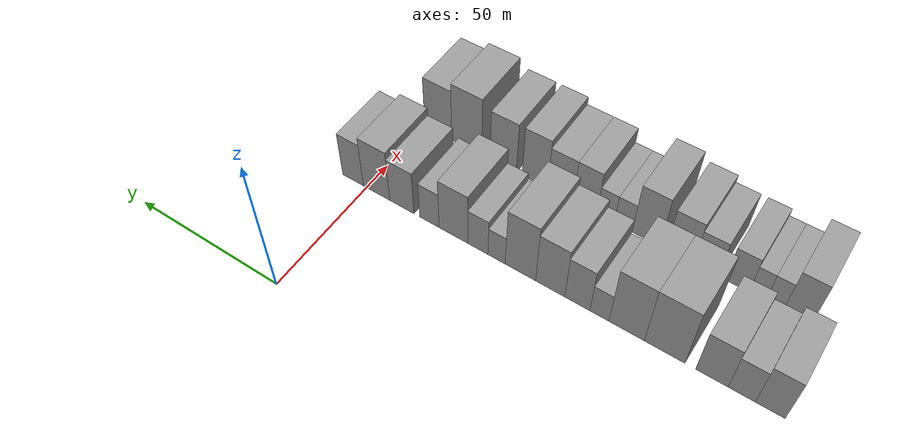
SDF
<sdf version="1.6">
 <world name="default">
  <model name="building_16">
   <static>1</static>
   <pose>50.0000 -125.5305 0 0.000000 0.000000 0.000000</pose>
   <link name="link">
    <pose>0 0 9.00 0 0 0</pose>
    <collision name="collision"><geometry><box><size>20.0000 7.9024 18.0000</size></box></geometry></collision>
    <visual name="visual">
     <cast_shadows>0</cast_shadows>
     <geometry><box><size>20.0000 7.9024 18.0000</size></box></geometry>
     <material>
      <script>
       <uri>model://grey_wall/materials/scripts</uri>
       <uri>model://grey_wall/materials/textures</uri>
       <name>vrc/grey_wall</name>
      </script>
     </material>
    </visual>
   </link>
  </model>
  <model name="building_17">
   <static>1</static>
   <pose>50.0000 -117.8935 0 0.000000 0.000000 0.000000</pose>
   <link name="link">
    <pose>0 0 7.50 0 0 0</pose>
    <collision name="collision"><geometry><box><size>20.0000 7.3716 15.0000</size></box></geometry></collision>
    <visual name="visual">
     <cast_shadows>0</cast_shadows>
     <geometry><box><size>20.0000 7.3716 15.0000</size></box></geometry>
     <material>
      <script>
       <uri>model://grey_wall/materials/scripts</uri>
       <uri>model://grey_wall/materials/textures</uri>
       <name>vrc/grey_wall</name>
      </script>
     </material>
    </visual>
   </link>
  </model>
  <model name="building_18">
   <static>1</static>
   <pose>50.0000 -109.7421 0 0.000000 0.000000 0.000000</pose>
   <link name="link">
    <pose>0 0 9.00 0 0 0</pose>
    <collision name="collision"><geometry><box><size>20.0000 8.9311 18.0000</size></box></geometry></collision>
    <visual name="visual">
     <cast_shadows>0</cast_shadows>
     <geometry><box><size>20.0000 8.9311 18.0000</size></box></geometry>
     <material>
      <script>
       <uri>model://grey_wall/materials/scripts</uri>
       <uri>model://grey_wall/materials/textures</uri>
       <name>vrc/grey_wall</name>
      </script>
     </material>
    </visual>
   </link>
  </model>
  <model name="building_19">
   <static>1</static>
   <pose>50.0000 -96.4635 0 0.000000 0.000000 0.000000</pose>
   <link name="link">
    <pose>0 0 12.00 0 0 0</pose>
    <collision name="collision"><geometry><box><size>20.0000 11.6262 24.0000</size></box></geometry></collision>
    <visual name="visual">
     <cast_shadows>0</cast_shadows>
     <geometry><box><size>20.0000 11.6262 24.0000</size></box></geometry>
     <material>
      <script>
       <uri>model://grey_wall/materials/scripts</uri>
       <uri>model://grey_wall/materials/textures</uri>
       <name>vrc/grey_wall</name>
      </script>
     </material>
    </visual>
   </link>
  </model>
  <model name="building_20">
   <static>1</static>
   <pose>50.0000 -85.4118 0 0.000000 0.000000 0.000000</pose>
   <link name="link">
    <pose>0 0 12.00 0 0 0</pose>
    <collision name="collision"><geometry><box><size>20.0000 10.4770 24.0000</size></box></geometry></collision>
    <visual name="visual">
     <cast_shadows>0</cast_shadows>
     <geometry><box><size>20.0000 10.4770 24.0000</size></box></geometry>
     <material>
      <script>
       <uri>model://grey_wall/materials/scripts</uri>
       <uri>model://grey_wall/materials/textures</uri>
       <name>vrc/grey_wall</name>
      </script>
     </material>
    </visual>
   </link>
  </model>
  <model name="building_21">
   <static>1</static>
   <pose>50.0000 -77.3133 0 0.000000 0.000000 0.000000</pose>
   <link name="link">
    <pose>0 0 6.00 0 0 0</pose>
    <collision name="collision"><geometry><box><size>20.0000 5.7202 12.0000</size></box></geometry></collision>
    <visual name="visual">
     <cast_shadows>0</cast_shadows>
     <geometry><box><size>20.0000 5.7202 12.0000</size></box></geometry>
     <material>
      <script>
       <uri>model://grey_wall/materials/scripts</uri>
       <uri>model://grey_wall/materials/textures</uri>
       <name>vrc/grey_wall</name>
      </script>
     </material>
    </visual>
   </link>
  </model>
  <model name="building_22">
   <static>1</static>
   <pose>50.0000 -70.5814 0 0.000000 0.000000 0.000000</pose>
   <link name="link">
    <pose>0 0 9.00 0 0 0</pose>
    <collision name="collision"><geometry><box><size>20.0000 7.7435 18.0000</size></box></geometry></collision>
    <visual name="visual">
     <cast_shadows>0</cast_shadows>
     <geometry><box><size>20.0000 7.7435 18.0000</size></box></geometry>
     <material>
      <script>
       <uri>model://grey_wall/materials/scripts</uri>
       <uri>model://grey_wall/materials/textures</uri>
       <name>vrc/grey_wall</name>
      </script>
     </material>
    </visual>
   </link>
  </model>
  <model name="building_23">
   <static>1</static>
   <pose>50.0000 -62.1440 0 0.000000 0.000000 0.000000</pose>
   <link name="link">
    <pose>0 0 10.50 0 0 0</pose>
    <collision name="collision"><geometry><box><size>20.0000 9.1313 21.0000</size></box></geometry></collision>
    <visual name="visual">
     <cast_shadows>0</cast_shadows>
     <geometry><box><size>20.0000 9.1313 21.0000</size></box></geometry>
     <material>
      <script>
       <uri>model://grey_wall/materials/scripts</uri>
       <uri>model://grey_wall/materials/textures</uri>
       <name>vrc/grey_wall</name>
      </script>
     </material>
    </visual>
   </link>
  </model>
  <model name="building_24">
   <static>1</static>
   <pose>50.0000 -52.6865 0 0.000000 0.000000 0.000000</pose>
   <link name="link">
    <pose>0 0 12.00 0 0 0</pose>
    <collision name="collision"><geometry><box><size>20.0000 9.7836 24.0000</size></box></geometry></collision>
    <visual name="visual">
     <cast_shadows>0</cast_shadows>
     <geometry><box><size>20.0000 9.7836 24.0000</size></box></geometry>
     <material>
      <script>
       <uri>model://grey_wall/materials/scripts</uri>
       <uri>model://grey_wall/materials/textures</uri>
       <name>vrc/grey_wall</name>
      </script>
     </material>
    </visual>
   </link>
  </model>
  <model name="building_25">
   <static>1</static>
   <pose>50.0000 -44.9658 0 0.000000 0.000000 0.000000</pose>
   <link name="link">
    <pose>0 0 6.00 0 0 0</pose>
    <collision name="collision"><geometry><box><size>20.0000 5.6578 12.0000</size></box></geometry></collision>
    <visual name="visual">
     <cast_shadows>0</cast_shadows>
     <geometry><box><size>20.0000 5.6578 12.0000</size></box></geometry>
     <material>
      <script>
       <uri>model://grey_wall/materials/scripts</uri>
       <uri>model://grey_wall/materials/textures</uri>
       <name>vrc/grey_wall</name>
      </script>
     </material>
    </visual>
   </link>
  </model>
  <model name="building_26">
   <static>1</static>
   <pose>50.0000 -38.7752 0 0.000000 0.000000 0.000000</pose>
   <link name="link">
    <pose>0 0 7.50 0 0 0</pose>
    <collision name="collision"><geometry><box><size>20.0000 6.7235 15.0000</size></box></geometry></collision>
    <visual name="visual">
     <cast_shadows>0</cast_shadows>
     <geometry><box><size>20.0000 6.7235 15.0000</size></box></geometry>
     <material>
      <script>
       <uri>model://grey_wall/materials/scripts</uri>
       <uri>model://grey_wall/materials/textures</uri>
       <name>vrc/grey_wall</name>
      </script>
     </material>
    </visual>
   </link>
  </model>
  <model name="building_27">
   <static>1</static>
   <pose>50.0000 -30.5352 0 0.000000 0.000000 0.000000</pose>
   <link name="link">
    <pose>0 0 10.50 0 0 0</pose>
    <collision name="collision"><geometry><box><size>20.0000 9.7567 21.0000</size></box></geometry></collision>
    <visual name="visual">
     <cast_shadows>0</cast_shadows>
     <geometry><box><size>20.0000 9.7567 21.0000</size></box></geometry>
     <material>
      <script>
       <uri>model://grey_wall/materials/scripts</uri>
       <uri>model://grey_wall/materials/textures</uri>
       <name>vrc/grey_wall</name>
      </script>
     </material>
    </visual>
   </link>
  </model>
  <model name="building_28">
   <static>1</static>
   <pose>50.0000 -22.3069 0 0.000000 0.000000 0.000000</pose>
   <link name="link">
    <pose>0 0 7.50 0 0 0</pose>
    <collision name="collision"><geometry><box><size>20.0000 6.6999 15.0000</size></box></geometry></collision>
    <visual name="visual">
     <cast_shadows>0</cast_shadows>
     <geometry><box><size>20.0000 6.6999 15.0000</size></box></geometry>
     <material>
      <script>
       <uri>model://grey_wall/materials/scripts</uri>
       <uri>model://grey_wall/materials/textures</uri>
       <name>vrc/grey_wall</name>
      </script>
     </material>
    </visual>
   </link>
  </model>
  <model name="building_29">
   <static>1</static>
   <pose>50.0000 -12.6182 0 0.000000 0.000000 0.000000</pose>
   <link name="link">
    <pose>0 0 9.00 0 0 0</pose>
    <collision name="collision"><geometry><box><size>20.0000 8.6775 18.0000</size></box></geometry></collision>
    <visual name="visual">
     <cast_shadows>0</cast_shadows>
     <geometry><box><size>20.0000 8.6775 18.0000</size></box></geometry>
     <material>
      <script>
       <uri>model://grey_wall/materials/scripts</uri>
       <uri>model://grey_wall/materials/textures</uri>
       <name>vrc/grey_wall</name>
      </script>
     </material>
    </visual>
   </link>
  </model>
  <model name="building_30">
   <static>1</static>
   <pose>50.0000 -3.4968 0 0.000000 0.000000 0.000000</pose>
   <link name="link">
    <pose>0 0 10.50 0 0 0</pose>
    <collision name="collision"><geometry><box><size>20.0000 9.5653 21.0000</size></box></geometry></collision>
    <visual name="visual">
     <cast_shadows>0</cast_shadows>
     <geometry><box><size>20.0000 9.5653 21.0000</size></box></geometry>
     <material>
      <script>
       <uri>model://grey_wall/materials/scripts</uri>
       <uri>model://grey_wall/materials/textures</uri>
       <name>vrc/grey_wall</name>
      </script>
     </material>
    </visual>
   </link>
  </model>
  <model name="building_31">
   <static>1</static>
   <pose>50.0000 5.1058 0 0.000000 0.000000 0.000000</pose>
   <link name="link">
    <pose>0 0 9.00 0 0 0</pose>
    <collision name="collision"><geometry><box><size>20.0000 7.6399 18.0000</size></box></geometry></collision>
    <visual name="visual">
     <cast_shadows>0</cast_shadows>
     <geometry><box><size>20.0000 7.6399 18.0000</size></box></geometry>
     <material>
      <script>
       <uri>model://grey_wall/materials/scripts</uri>
       <uri>model://grey_wall/materials/textures</uri>
       <name>vrc/grey_wall</name>
      </script>
     </material>
    </visual>
   </link>
  </model>
  <model name="building_78">
   <static>1</static>
   <pose>79.0000 -120.9470 0 0.000000 0.000000 0.000000</pose>
   <link name="link">
    <pose>0 0 9.00 0 0 0</pose>
    <collision name="collision"><geometry><box><size>20.0000 7.8013 18.0000</size></box></geometry></collision>
    <visual name="visual">
     <cast_shadows>0</cast_shadows>
     <geometry><box><size>20.0000 7.8013 18.0000</size></box></geometry>
     <material>
      <script>
       <uri>model://grey_wall/materials/scripts</uri>
       <uri>model://grey_wall/materials/textures</uri>
       <name>vrc/grey_wall</name>
      </script>
     </material>
    </visual>
   </link>
  </model>
  <model name="building_79">
   <static>1</static>
   <pose>79.0000 -114.4750 0 0.000000 0.000000 0.000000</pose>
   <link name="link">
    <pose>0 0 6.00 0 0 0</pose>
    <collision name="collision"><geometry><box><size>20.0000 5.1426 12.0000</size></box></geometry></collision>
    <visual name="visual">
     <cast_shadows>0</cast_shadows>
     <geometry><box><size>20.0000 5.1426 12.0000</size></box></geometry>
     <material>
      <script>
       <uri>model://grey_wall/materials/scripts</uri>
       <uri>model://grey_wall/materials/textures</uri>
       <name>vrc/grey_wall</name>
      </script>
     </material>
    </visual>
   </link>
  </model>
  <model name="building_80">
   <static>1</static>
   <pose>79.0000 -109.4943 0 0.000000 0.000000 0.000000</pose>
   <link name="link">
    <pose>0 0 6.00 0 0 0</pose>
    <collision name="collision"><geometry><box><size>20.0000 4.8187 12.0000</size></box></geometry></collision>
    <visual name="visual">
     <cast_shadows>0</cast_shadows>
     <geometry><box><size>20.0000 4.8187 12.0000</size></box></geometry>
     <material>
      <script>
       <uri>model://grey_wall/materials/scripts</uri>
       <uri>model://grey_wall/materials/textures</uri>
       <name>vrc/grey_wall</name>
      </script>
     </material>
    </visual>
   </link>
  </model>
  <model name="building_81">
   <static>1</static>
   <pose>79.0000 -103.6256 0 0.000000 0.000000 0.000000</pose>
   <link name="link">
    <pose>0 0 7.50 0 0 0</pose>
    <collision name="collision"><geometry><box><size>20.0000 6.9189 15.0000</size></box></geometry></collision>
    <visual name="visual">
     <cast_shadows>0</cast_shadows>
     <geometry><box><size>20.0000 6.9189 15.0000</size></box></geometry>
     <material>
      <script>
       <uri>model://grey_wall/materials/scripts</uri>
       <uri>model://grey_wall/materials/textures</uri>
       <name>vrc/grey_wall</name>
      </script>
     </material>
    </visual>
   </link>
  </model>
  <model name="building_82">
   <static>1</static>
   <pose>79.0000 -94.4573 0 0.000000 0.000000 0.000000</pose>
   <link name="link">
    <pose>0 0 7.50 0 0 0</pose>
    <collision name="collision"><geometry><box><size>20.0000 7.4176 15.0000</size></box></geometry></collision>
    <visual name="visual">
     <cast_shadows>0</cast_shadows>
     <geometry><box><size>20.0000 7.4176 15.0000</size></box></geometry>
     <material>
      <script>
       <uri>model://grey_wall/materials/scripts</uri>
       <uri>model://grey_wall/materials/textures</uri>
       <name>vrc/grey_wall</name>
      </script>
     </material>
    </visual>
   </link>
  </model>
  <model name="building_83">
   <static>1</static>
   <pose>79.0000 -86.5653 0 0.000000 0.000000 0.000000</pose>
   <link name="link">
    <pose>0 0 9.00 0 0 0</pose>
    <collision name="collision"><geometry><box><size>20.0000 8.3665 18.0000</size></box></geometry></collision>
    <visual name="visual">
     <cast_shadows>0</cast_shadows>
     <geometry><box><size>20.0000 8.3665 18.0000</size></box></geometry>
     <material>
      <script>
       <uri>model://grey_wall/materials/scripts</uri>
       <uri>model://grey_wall/materials/textures</uri>
       <name>vrc/grey_wall</name>
      </script>
     </material>
    </visual>
   </link>
  </model>
  <model name="building_84">
   <static>1</static>
   <pose>79.0000 -76.0252 0 0.000000 0.000000 0.000000</pose>
   <link name="link">
    <pose>0 0 10.50 0 0 0</pose>
    <collision name="collision"><geometry><box><size>20.0000 8.7137 21.0000</size></box></geometry></collision>
    <visual name="visual">
     <cast_shadows>0</cast_shadows>
     <geometry><box><size>20.0000 8.7137 21.0000</size></box></geometry>
     <material>
      <script>
       <uri>model://grey_wall/materials/scripts</uri>
       <uri>model://grey_wall/materials/textures</uri>
       <name>vrc/grey_wall</name>
      </script>
     </material>
    </visual>
   </link>
  </model>
  <model name="building_85">
   <static>1</static>
   <pose>79.0000 -68.8217 0 0.000000 0.000000 0.000000</pose>
   <link name="link">
    <pose>0 0 6.00 0 0 0</pose>
    <collision name="collision"><geometry><box><size>20.0000 5.6934 12.0000</size></box></geometry></collision>
    <visual name="visual">
     <cast_shadows>0</cast_shadows>
     <geometry><box><size>20.0000 5.6934 12.0000</size></box></geometry>
     <material>
      <script>
       <uri>model://grey_wall/materials/scripts</uri>
       <uri>model://grey_wall/materials/textures</uri>
       <name>vrc/grey_wall</name>
      </script>
     </material>
    </visual>
   </link>
  </model>
  <model name="building_86">
   <static>1</static>
   <pose>79.0000 -63.1987 0 0.000000 0.000000 0.000000</pose>
   <link name="link">
    <pose>0 0 6.00 0 0 0</pose>
    <collision name="collision"><geometry><box><size>20.0000 5.5525 12.0000</size></box></geometry></collision>
    <visual name="visual">
     <cast_shadows>0</cast_shadows>
     <geometry><box><size>20.0000 5.5525 12.0000</size></box></geometry>
     <material>
      <script>
       <uri>model://grey_wall/materials/scripts</uri>
       <uri>model://grey_wall/materials/textures</uri>
       <name>vrc/grey_wall</name>
      </script>
     </material>
    </visual>
   </link>
  </model>
  <model name="building_87">
   <static>1</static>
   <pose>79.0000 -56.4975 0 0.000000 0.000000 0.000000</pose>
   <link name="link">
    <pose>0 0 9.00 0 0 0</pose>
    <collision name="collision"><geometry><box><size>20.0000 7.8499 18.0000</size></box></geometry></collision>
    <visual name="visual">
     <cast_shadows>0</cast_shadows>
     <geometry><box><size>20.0000 7.8499 18.0000</size></box></geometry>
     <material>
      <script>
       <uri>model://grey_wall/materials/scripts</uri>
       <uri>model://grey_wall/materials/textures</uri>
       <name>vrc/grey_wall</name>
      </script>
     </material>
    </visual>
   </link>
  </model>
  <model name="building_88">
   <static>1</static>
   <pose>79.0000 -48.2520 0 0.000000 0.000000 0.000000</pose>
   <link name="link">
    <pose>0 0 9.00 0 0 0</pose>
    <collision name="collision"><geometry><box><size>20.0000 8.6411 18.0000</size></box></geometry></collision>
    <visual name="visual">
     <cast_shadows>0</cast_shadows>
     <geometry><box><size>20.0000 8.6411 18.0000</size></box></geometry>
     <material>
      <script>
       <uri>model://grey_wall/materials/scripts</uri>
       <uri>model://grey_wall/materials/textures</uri>
       <name>vrc/grey_wall</name>
      </script>
     </material>
    </visual>
   </link>
  </model>
  <model name="building_89">
   <static>1</static>
   <pose>79.0000 -39.5945 0 0.000000 0.000000 0.000000</pose>
   <link name="link">
    <pose>0 0 10.50 0 0 0</pose>
    <collision name="collision"><geometry><box><size>20.0000 8.6741 21.0000</size></box></geometry></collision>
    <visual name="visual">
     <cast_shadows>0</cast_shadows>
     <geometry><box><size>20.0000 8.6741 21.0000</size></box></geometry>
     <material>
      <script>
       <uri>model://grey_wall/materials/scripts</uri>
       <uri>model://grey_wall/materials/textures</uri>
       <name>vrc/grey_wall</name>
      </script>
     </material>
    </visual>
   </link>
  </model>
  <model name="building_90">
   <static>1</static>
   <pose>79.0000 -28.6208 0 0.000000 0.000000 0.000000</pose>
   <link name="link">
    <pose>0 0 10.50 0 0 0</pose>
    <collision name="collision"><geometry><box><size>20.0000 9.2733 21.0000</size></box></geometry></collision>
    <visual name="visual">
     <cast_shadows>0</cast_shadows>
     <geometry><box><size>20.0000 9.2733 21.0000</size></box></geometry>
     <material>
      <script>
       <uri>model://grey_wall/materials/scripts</uri>
       <uri>model://grey_wall/materials/textures</uri>
       <name>vrc/grey_wall</name>
      </script>
     </material>
    </visual>
   </link>
  </model>
  <model name="building_91">
   <static>1</static>
   <pose>79.0000 -15.5311 0 0.000000 0.000000 0.000000</pose>
   <link name="link">
    <pose>0 0 12.00 0 0 0</pose>
    <collision name="collision"><geometry><box><size>20.0000 10.9062 24.0000</size></box></geometry></collision>
    <visual name="visual">
     <cast_shadows>0</cast_shadows>
     <geometry><box><size>20.0000 10.9062 24.0000</size></box></geometry>
     <material>
      <script>
       <uri>model://grey_wall/materials/scripts</uri>
       <uri>model://grey_wall/materials/textures</uri>
       <name>vrc/grey_wall</name>
      </script>
     </material>
    </visual>
   </link>
  </model>
  <model name="building_92">
   <static>1</static>
   <pose>79.0000 -5.0914 0 0.000000 0.000000 0.000000</pose>
   <link name="link">
    <pose>0 0 10.50 0 0 0</pose>
    <collision name="collision"><geometry><box><size>20.0000 9.9732 21.0000</size></box></geometry></collision>
    <visual name="visual">
     <cast_shadows>0</cast_shadows>
     <geometry><box><size>20.0000 9.9732 21.0000</size></box></geometry>
     <material>
      <script>
       <uri>model://grey_wall/materials/scripts</uri>
       <uri>model://grey_wall/materials/textures</uri>
       <name>vrc/grey_wall</name>
      </script>
     </material>
    </visual>
   </link>
  </model>
 </world>
</sdf>
